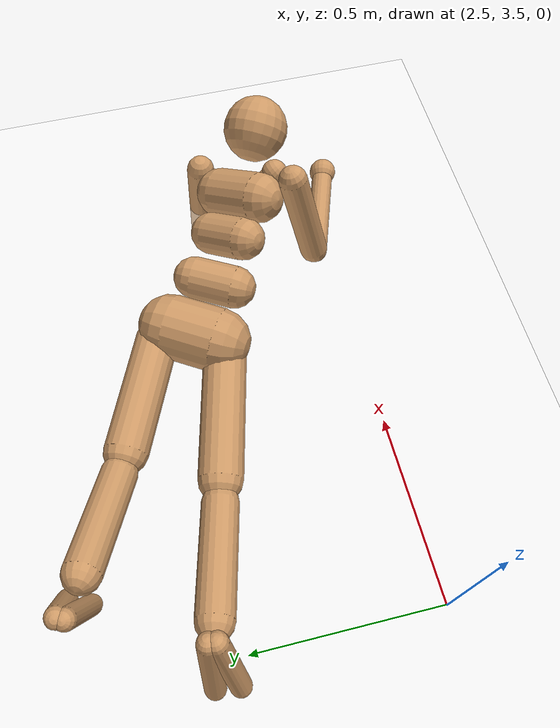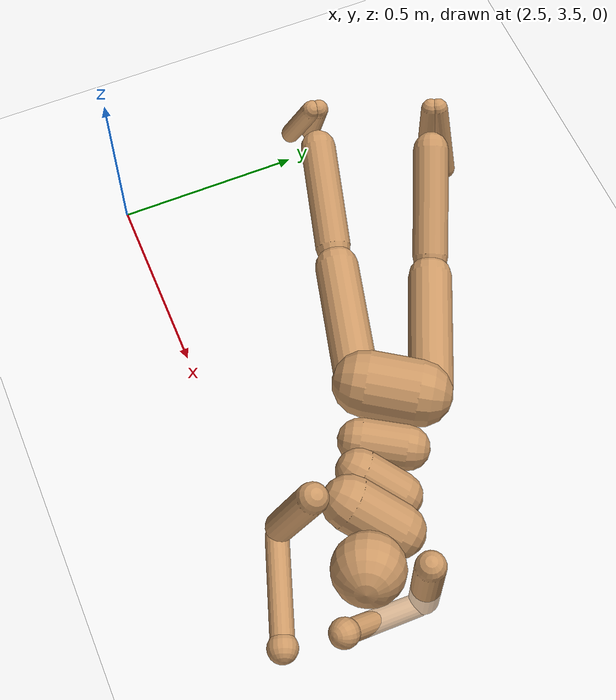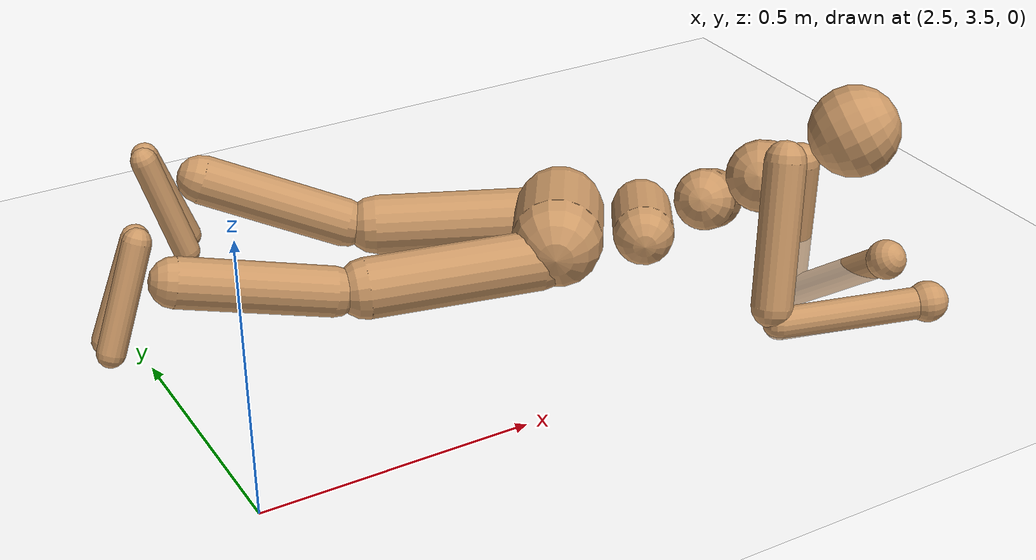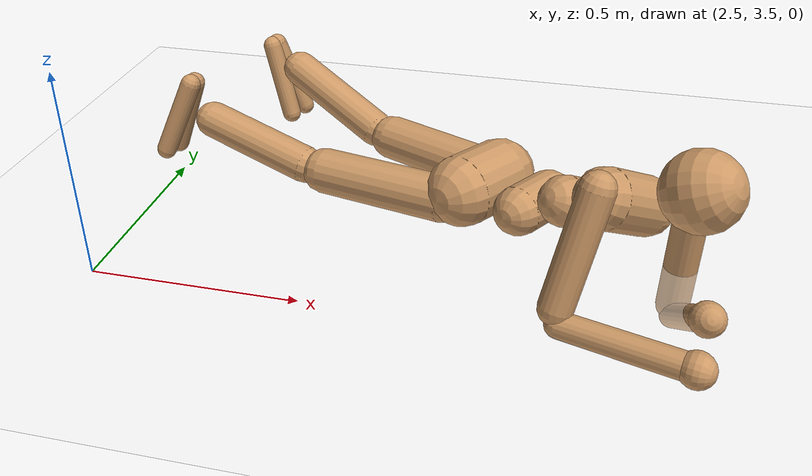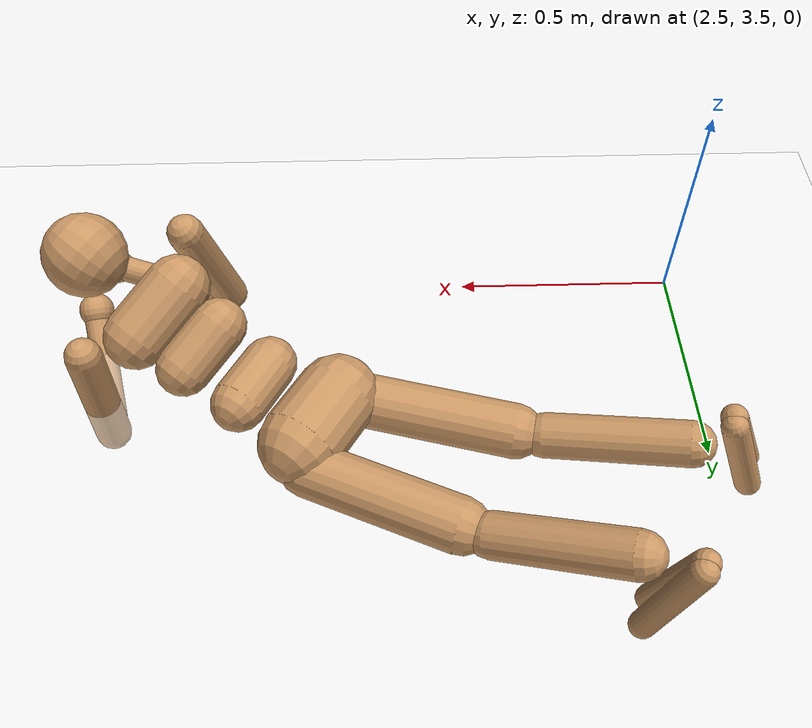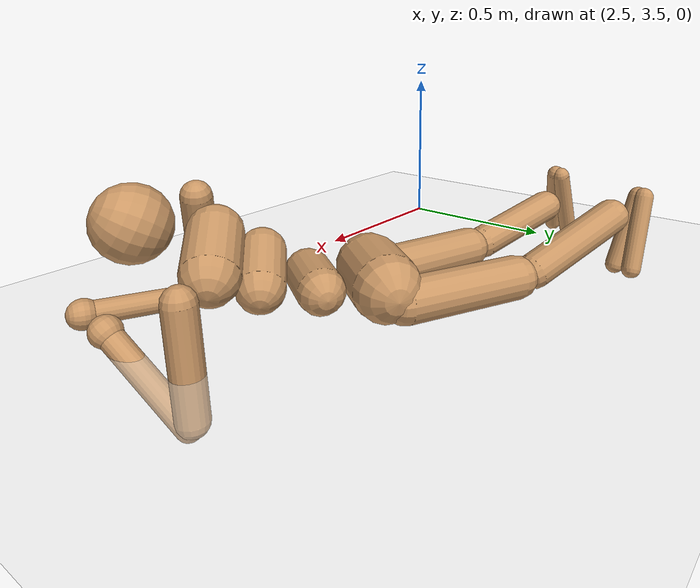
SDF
<sdf version="1.10">
 <world name="empty">
  <model name="ground_plane">
   <static>true</static>
   <link name="link">
    <collision name="collision">
     <geometry><plane><normal>0 0 1</normal><size>100 100</size></plane></geometry>
    </collision>
    <visual name="visual">
     <geometry><plane><normal>0 0 1</normal><size>20 20</size></plane></geometry>
     <material>
      <ambient>1 1 1 1</ambient>
      <diffuse>1 1 1 1</diffuse>
      <pbr>
       <metal>
        <albedo_map>file:///home/kiranchand/Downloads/project_2026/grass.jpg</albedo_map>
        <roughness>0.9</roughness>
        <metalness>0.0</metalness>
       </metal>
      </pbr>
     </material>
    </visual>
    <inertial>
     <mass>1</mass>
     <inertia><ixx>1</ixx><ixy>0</ixy><ixz>0</ixz><iyy>1</iyy><iyz>0</iyz><izz>1</izz></inertia>
    </inertial>
   </link>
  </model>
  <model name="humanod_from_mjcf">
   <static>false</static>
   <pose>2.5448099758621097 4.3788755101594283 -0.53820748431299448 -0.71282996008800936 0.85456380769252327 -1.3645939909063616</pose>
   <link name="torso">
    <pose>0 0 1.5 0 0 0</pose>
    <inertial>
     <pose>-0.00386404 0 -0.0463685 0 0.08314120000000004 0</pose>
     <mass>5.8538300000000003</mass>
     <inertia>
      <ixx>0.051274199999999999</ixx>
      <ixy>0</ixy>
      <ixz>0</ixz>
      <iyy>0.031966700000000001</iyy>
      <iyz>0</iyz>
      <izz>0.031149300000000001</izz>
     </inertia>
    </inertial>
    <collision name="collision_torso">
     <pose>0 0 0 1.5708 0 0</pose>
     <geometry>
      <capsule><radius>0.070000000000000007</radius><length>0.14000000000000001</length></capsule>
     </geometry>
     <surface>
      <contact><collide_bitmask>255</collide_bitmask></contact>
      <friction><ode><mu>0.69999999999999996</mu></ode></friction>
     </surface>
    </collision>
    <collision name="collision_upper_waist">
     <pose>-0.01 0 -0.12 1.5708 0 0</pose>
     <geometry><capsule><radius>0.059999999999999998</radius><length>0.12</length></capsule></geometry>
     <surface>
      <contact><collide_bitmask>255</collide_bitmask></contact>
      <friction><ode><mu>0.69999999999999996</mu></ode></friction>
     </surface>
    </collision>
    <light name="top" type="spot">
     <pose>0 0 2 0 0 0</pose>
     <cast_shadows>false</cast_shadows>
     <intensity>1</intensity>
     <direction>0 0 -1</direction>
     <diffuse>0.699999988 0.699999988 0.699999988 1</diffuse>
     <specular>0.300000012 0.300000012 0.300000012 1</specular>
     <attenuation><range>10</range><linear>0</linear><constant>1</constant><quadratic>0</quadratic></attenuation>
     <spot><inner_angle>0</inner_angle><outer_angle>1.5708</outer_angle><falloff>2</falloff></spot>
    </light>
    <sensor name="back" type="camera">
     <pose>-3 0 1 7.8504600000000004e-17 7.8504600000000004e-17 -7.8504600000000004e-17</pose>
     <topic>__default__</topic>
     <update_rate>25</update_rate>
     <enable_metrics>false</enable_metrics>
     <camera name="__default__">
      <horizontal_fov>1.0469999999999999</horizontal_fov>
      <image><width>320</width><height>240</height><format>RGB_INT8</format><anti_aliasing>4</anti_aliasing></image>
      <camera_info_topic>__default__</camera_info_topic>
      <triggered>false</triggered>
      <clip><near>0.10000000000000001</near><far>100</far></clip>
      <save enabled="false"><path>__default__</path></save>
      <visibility_mask>4294967295</visibility_mask>
      <noise><type>none</type><mean>0</mean><stddev>0</stddev></noise>
      <distortion><k1>0</k1><k2>0</k2><k3>0</k3><p1>0</p1><p2>0</p2><center>0.5 0.5</center></distortion>
      <lens>
       <type>stereographic</type>
       <scale_to_hfov>true</scale_to_hfov>
       <cutoff_angle>1.5708</cutoff_angle>
       <env_texture_size>256</env_texture_size>
      </lens>
     </camera>
    </sensor>
    <sensor name="side" type="camera">
     <pose>0 -3 1 2.2204499999999999e-16 2.4651903288156619e-32 1.5708</pose>
     <topic>__default__</topic>
     <update_rate>25</update_rate>
     <enable_metrics>false</enable_metrics>
     <camera name="__default__">
      <horizontal_fov>1.0469999999999999</horizontal_fov>
      <image><width>320</width><height>240</height><format>RGB_INT8</format><anti_aliasing>4</anti_aliasing></image>
      <camera_info_topic>__default__</camera_info_topic>
      <triggered>false</triggered>
      <clip><near>0.10000000000000001</near><far>100</far></clip>
      <save enabled="false"><path>__default__</path></save>
      <visibility_mask>4294967295</visibility_mask>
      <noise><type>none</type><mean>0</mean><stddev>0</stddev></noise>
      <distortion><k1>0</k1><k2>0</k2><k3>0</k3><p1>0</p1><p2>0</p2><center>0.5 0.5</center></distortion>
      <lens>
       <type>stereographic</type>
       <scale_to_hfov>true</scale_to_hfov>
       <cutoff_angle>1.5708</cutoff_angle>
       <env_texture_size>256</env_texture_size>
      </lens>
     </camera>
    </sensor>
    <visual name="visual_torso">
     <pose>0 0 0 1.5708 0 0</pose>
     <geometry>
      <capsule><radius>0.070000000000000007</radius><length>0.14000000000000001</length></capsule>
     </geometry>
     <visibility_flags>4294967295</visibility_flags>
     <material>
      <ambient>0.800000012 0.600000024 0.400000006 1</ambient>
      <diffuse>0.800000012 0.600000024 0.400000006 1</diffuse>
      <specular>0.5 0.5 0.5 1</specular>
      <emissive>0 0 0 1</emissive>
      <render_order>0</render_order>
      <lighting>true</lighting>
      <double_sided>false</double_sided>
      <shader type="pixel"/>
     </material>
    </visual>
    <visual name="visual_upper_waist">
     <pose>-0.01 0 -0.12 1.5708 0 0</pose>
     <geometry><capsule><radius>0.059999999999999998</radius><length>0.12</length></capsule></geometry>
     <visibility_flags>4294967295</visibility_flags>
     <material>
      <ambient>0.800000012 0.600000024 0.400000006 1</ambient>
      <diffuse>0.800000012 0.600000024 0.400000006 1</diffuse>
      <specular>0.5 0.5 0.5 1</specular>
      <emissive>0 0 0 1</emissive>
      <render_order>0</render_order>
      <lighting>true</lighting>
      <double_sided>false</double_sided>
      <shader type="pixel"/>
     </material>
    </visual>
   </link>
   <link name="head">
    <pose>0 1.7763568394002505e-15 1.6900000000000013 1.6653345369377348e-16 -7.1275450819197061e-16 -5.9348734942507915e-32</pose>
    <inertial>
     <mass>3.0536300000000001</mass>
     <inertia>
      <ixx>0.0098937499999999998</ixx>
      <ixy>0</ixy>
      <ixz>0</ixz>
      <iyy>0.0098937499999999998</iyy>
      <iyz>0</iyz>
      <izz>0.0098937499999999998</izz>
     </inertia>
    </inertial>
    <collision name="collision_head">
     <geometry><sphere><radius>0.089999999999999997</radius></sphere></geometry>
     <surface>
      <contact><collide_bitmask>255</collide_bitmask></contact>
      <friction><ode><mu>0.69999999999999996</mu></ode></friction>
     </surface>
    </collision>
    <sensor name="egocentric" type="camera">
     <pose>0.089999999999999997 0 0 2.0641799999999988e-16 0.095166200000000006 -3.2285999999999984e-16</pose>
     <topic>__default__</topic>
     <update_rate>25</update_rate>
     <enable_metrics>false</enable_metrics>
     <camera name="__default__">
      <horizontal_fov>1.0469999999999999</horizontal_fov>
      <image><width>320</width><height>240</height><format>RGB_INT8</format><anti_aliasing>4</anti_aliasing></image>
      <camera_info_topic>__default__</camera_info_topic>
      <triggered>false</triggered>
      <clip><near>0.10000000000000001</near><far>100</far></clip>
      <save enabled="false"><path>__default__</path></save>
      <visibility_mask>4294967295</visibility_mask>
      <noise><type>none</type><mean>0</mean><stddev>0</stddev></noise>
      <distortion><k1>0</k1><k2>0</k2><k3>0</k3><p1>0</p1><p2>0</p2><center>0.5 0.5</center></distortion>
      <lens>
       <type>stereographic</type>
       <scale_to_hfov>true</scale_to_hfov>
       <cutoff_angle>1.5708</cutoff_angle>
       <env_texture_size>256</env_texture_size>
      </lens>
     </camera>
    </sensor>
    <visual name="visual_head">
     <geometry><sphere><radius>0.089999999999999997</radius></sphere></geometry>
     <visibility_flags>4294967295</visibility_flags>
     <material>
      <ambient>0.800000012 0.600000024 0.400000006 1</ambient>
      <diffuse>0.800000012 0.600000024 0.400000006 1</diffuse>
      <specular>0.5 0.5 0.5 1</specular>
      <emissive>0 0 0 1</emissive>
      <render_order>0</render_order>
      <lighting>true</lighting>
      <double_sided>false</double_sided>
      <shader type="pixel"/>
     </material>
    </visual>
   </link>
   <link name="lower_waist">
    <pose>-0.028713365916392508 -0.0093121781888401145 1.2434525120459132 -2.9312527204387672e-17 0.32739137618254172 0.46174321219167797</pose>
    <inertial>
     <pose>0 0 0 1.5708 0 0</pose>
     <mass>2.2619500000000001</mass>
     <inertia>
      <ixx>0.0098530400000000004</ixx>
      <ixy>0</ixy>
      <ixz>0</ixz>
      <iyy>0.0098530400000000004</iyy>
      <iyz>0</iyz>
      <izz>0.0037457800000000002</izz>
     </inertia>
    </inertial>
    <collision name="collision_lower_waist">
     <pose>0 0 0 1.5708 0 0</pose>
     <geometry><capsule><radius>0.059999999999999998</radius><length>0.12</length></capsule></geometry>
     <surface>
      <contact><collide_bitmask>255</collide_bitmask></contact>
      <friction><ode><mu>0.69999999999999996</mu></ode></friction>
     </surface>
    </collision>
    <visual name="visual_lower_waist">
     <pose>0 0 0 1.5708 0 0</pose>
     <geometry><capsule><radius>0.059999999999999998</radius><length>0.12</length></capsule></geometry>
     <visibility_flags>4294967295</visibility_flags>
     <material>
      <ambient>0.800000012 0.600000024 0.400000006 1</ambient>
      <diffuse>0.800000012 0.600000024 0.400000006 1</diffuse>
      <specular>0.5 0.5 0.5 1</specular>
      <emissive>0 0 0 1</emissive>
      <render_order>0</render_order>
      <lighting>true</lighting>
      <double_sided>false</double_sided>
      <shader type="pixel"/>
     </material>
    </visual>
   </link>
   <link name="lower_waist_dummy_0">
    <pose>-0.0099999999999988987 8.8817841970012523e-16 1.2400000000000009 -2.2229199491852151e-16 -9.4567010196203731e-16 0.46174321219167835</pose>
    <inertial>
     <mass>9.9999999999999995e-07</mass>
     <inertia>
      <ixx>3.9999999999999998e-07</ixx>
      <ixy>0</ixy>
      <ixz>0</ixz>
      <iyy>3.9999999999999998e-07</iyy>
      <iyz>0</iyz>
      <izz>3.9999999999999998e-07</izz>
     </inertia>
    </inertial>
   </link>
   <link name="pelvis">
    <pose>-0.077874604998719121 -0.029567527596033649 1.0872838107020317 0.037685347690583022 0.32739137618254088 0.46174321219167741</pose>
    <inertial>
     <pose>-0.02 0 0 1.5708 0 0</pose>
     <mass>6.6161899999999996</mass>
     <inertia>
      <ixx>0.052318000000000003</ixx>
      <ixy>0</ixy>
      <ixz>0</ixz>
      <iyy>0.052318000000000003</iyy>
      <iyz>0</iyz>
      <izz>0.024322099999999999</izz>
     </inertia>
    </inertial>
    <collision name="collision_butt">
     <pose>-0.02 0 0 1.5708 0 0</pose>
     <geometry>
      <capsule><radius>0.089999999999999997</radius><length>0.14000000000000001</length></capsule>
     </geometry>
     <surface>
      <contact><collide_bitmask>255</collide_bitmask></contact>
      <friction><ode><mu>0.69999999999999996</mu></ode></friction>
     </surface>
    </collision>
    <visual name="visual_butt">
     <pose>-0.02 0 0 1.5708 0 0</pose>
     <geometry>
      <capsule><radius>0.089999999999999997</radius><length>0.14000000000000001</length></capsule>
     </geometry>
     <visibility_flags>4294967295</visibility_flags>
     <material>
      <ambient>0.800000012 0.600000024 0.400000006 1</ambient>
      <diffuse>0.800000012 0.600000024 0.400000006 1</diffuse>
      <specular>0.5 0.5 0.5 1</specular>
      <emissive>0 0 0 1</emissive>
      <render_order>0</render_order>
      <lighting>true</lighting>
      <double_sided>false</double_sided>
      <shader type="pixel"/>
     </material>
    </visual>
   </link>
   <link name="right_thigh">
    <pose>-0.046619138292701479 -0.12394872332954066 1.0458678030129474 -0.34054518011049906 0.4595290586002167 0.39873370778583783</pose>
    <inertial>
     <pose>0 0.0050000000000000001 -0.17000000000000001 0.02940329999999999 0 0</pose>
     <mass>4.7517500000000004</mass>
     <inertia>
      <ixx>0.074951699999999996</ixx>
      <ixy>0</ixy>
      <ixz>0</ixz>
      <iyy>0.074951699999999996</iyy>
      <iyz>0</iyz>
      <izz>0.0082274300000000009</izz>
     </inertia>
    </inertial>
    <collision name="collision_right_thigh">
     <pose>0 0.0050000000000000001 -0.17000000000000001 0.029403299999999993 0 0</pose>
     <geometry>
      <capsule><radius>0.059999999999999998</radius><length>0.34014699999999998</length></capsule>
     </geometry>
     <surface>
      <contact><collide_bitmask>255</collide_bitmask></contact>
      <friction><ode><mu>0.69999999999999996</mu></ode></friction>
     </surface>
    </collision>
    <visual name="visual_right_thigh">
     <pose>0 0.0050000000000000001 -0.17000000000000001 0.029403299999999993 0 0</pose>
     <geometry>
      <capsule><radius>0.059999999999999998</radius><length>0.34014699999999998</length></capsule>
     </geometry>
     <visibility_flags>4294967295</visibility_flags>
     <material>
      <ambient>0.800000012 0.600000024 0.400000006 1</ambient>
      <diffuse>0.800000012 0.600000024 0.400000006 1</diffuse>
      <specular>0.5 0.5 0.5 1</specular>
      <emissive>0 0 0 1</emissive>
      <render_order>0</render_order>
      <lighting>true</lighting>
      <double_sided>false</double_sided>
      <shader type="pixel"/>
     </material>
    </visual>
   </link>
   <link name="right_thigh_dummy_0">
    <pose>-0.046618132881000029 -0.12394867423652745 1.0458678482773707 -0.31723047312103386 0.32738736892012427 0.46174055459103008</pose>
    <inertial>
     <mass>9.9999999999999995e-07</mass>
     <inertia>
      <ixx>3.9999999999999998e-07</ixx>
      <ixy>0</ixy>
      <ixz>0</ixz>
      <iyy>3.9999999999999998e-07</iyy>
      <iyz>0</iyz>
      <izz>3.9999999999999998e-07</izz>
     </inertia>
    </inertial>
   </link>
   <link name="right_thigh_dummy_1">
    <pose>-0.046618132881000029 -0.12394867423652745 1.0458678482773713 -0.32122774724551906 0.32347174062191397 0.44923814021391423</pose>
    <inertial>
     <mass>9.9999999999999995e-07</mass>
     <inertia>
      <ixx>3.9999999999999998e-07</ixx>
      <ixy>0</ixy>
      <ixz>0</ixz>
      <iyy>3.9999999999999998e-07</iyy>
      <iyz>0</iyz>
      <izz>3.9999999999999998e-07</izz>
     </inertia>
    </inertial>
   </link>
   <link name="right_shin">
    <pose>-0.15851596583142369 -0.30670514780440072 0.70509672438244209 -0.39848238343238479 0.68960230685647683 0.29290224150087368</pose>
    <inertial>
     <pose>0 0 -0.14999999999999999 0 0 0</pose>
     <mass>2.7557</mass>
     <inertia>
      <ixx>0.032607999999999998</ixx>
      <ixy>0</ixy>
      <ixz>0</ixz>
      <iyy>0.032607999999999998</iyy>
      <iyz>0</iyz>
      <izz>0.0031898899999999999</izz>
     </inertia>
    </inertial>
    <collision name="collision_right_shin">
     <pose>0 0 -0.14999999999999999 0 0 0</pose>
     <geometry>
      <capsule><radius>0.049000000000000002</radius><length>0.29999999999999999</length></capsule>
     </geometry>
     <surface>
      <contact><collide_bitmask>255</collide_bitmask></contact>
      <friction><ode><mu>0.69999999999999996</mu></ode></friction>
     </surface>
    </collision>
    <visual name="visual_right_shin">
     <pose>0 0 -0.14999999999999999 0 0 0</pose>
     <geometry>
      <capsule><radius>0.049000000000000002</radius><length>0.29999999999999999</length></capsule>
     </geometry>
     <visibility_flags>4294967295</visibility_flags>
     <material>
      <ambient>0.800000012 0.600000024 0.400000006 1</ambient>
      <diffuse>0.800000012 0.600000024 0.400000006 1</diffuse>
      <specular>0.5 0.5 0.5 1</specular>
      <emissive>0 0 0 1</emissive>
      <render_order>0</render_order>
      <lighting>true</lighting>
      <double_sided>false</double_sided>
      <shader type="pixel"/>
     </material>
    </visual>
   </link>
   <link name="right_foot">
    <pose>-0.34024670426983494 -0.52168910949273695 0.43616303184288063 -0.54512351942040893 0.79993000925645397 0.17445295693411811</pose>
    <inertial>
     <pose>0.035000000000000003 -0.01 0 2.6535897933102466e-06 -1.5707926536359933 3.1415926535897931</pose>
     <mass>1.13114</mass>
     <inertia>
      <ixx>0.0064464600000000002</ixx>
      <ixy>0</ixy>
      <ixz>0</ixz>
      <iyy>0.0059437200000000004</iyy>
      <iyz>0</iyz>
      <izz>0.00090301699999999999</izz>
     </inertia>
    </inertial>
    <collision name="collision_right_right_foot">
     <pose>0.035000000000000003 -0.029999999999999999 0 -1.5707999999999998 -1.47584 1.47584</pose>
     <geometry><capsule><radius>0.027</radius><length>0.21095</length></capsule></geometry>
     <surface>
      <contact><collide_bitmask>255</collide_bitmask></contact>
      <friction><ode><mu>0.69999999999999996</mu></ode></friction>
     </surface>
    </collision>
    <collision name="collision_left_right_foot">
     <pose>0.035000000000000003 0.01 0 1.5707999999999998 -1.47584 -1.47584</pose>
     <geometry><capsule><radius>0.027</radius><length>0.21095</length></capsule></geometry>
     <surface>
      <contact><collide_bitmask>255</collide_bitmask></contact>
      <friction><ode><mu>0.69999999999999996</mu></ode></friction>
     </surface>
    </collision>
    <visual name="visual_right_right_foot">
     <pose>0.035000000000000003 -0.029999999999999999 0 -1.5707999999999998 -1.47584 1.47584</pose>
     <geometry><capsule><radius>0.027</radius><length>0.21095</length></capsule></geometry>
     <visibility_flags>4294967295</visibility_flags>
     <material>
      <ambient>0.800000012 0.600000024 0.400000006 1</ambient>
      <diffuse>0.800000012 0.600000024 0.400000006 1</diffuse>
      <specular>0.5 0.5 0.5 1</specular>
      <emissive>0 0 0 1</emissive>
      <render_order>0</render_order>
      <lighting>true</lighting>
      <double_sided>false</double_sided>
      <shader type="pixel"/>
     </material>
    </visual>
    <visual name="visual_left_right_foot">
     <pose>0.035000000000000003 0.01 0 1.5707999999999998 -1.47584 -1.47584</pose>
     <geometry><capsule><radius>0.027</radius><length>0.21095</length></capsule></geometry>
     <visibility_flags>4294967295</visibility_flags>
     <material>
      <ambient>0.800000012 0.600000024 0.400000006 1</ambient>
      <diffuse>0.800000012 0.600000024 0.400000006 1</diffuse>
      <specular>0.5 0.5 0.5 1</specular>
      <emissive>0 0 0 1</emissive>
      <render_order>0</render_order>
      <lighting>true</lighting>
      <double_sided>false</double_sided>
      <shader type="pixel"/>
     </material>
    </visual>
   </link>
   <link name="right_foot_dummy_0">
    <pose>-0.34154866673836626 -0.51965567545195412 0.4353174233925754 -0.45177926445464667 0.81522141683491112 0.21508922472239589</pose>
    <inertial>
     <mass>9.9999999999999995e-07</mass>
     <inertia>
      <ixx>3.9999999999999998e-07</ixx>
      <ixy>0</ixy>
      <ixz>0</ixz>
      <iyy>3.9999999999999998e-07</iyy>
      <iyz>0</iyz>
      <izz>3.9999999999999998e-07</izz>
     </inertia>
    </inertial>
   </link>
   <link name="left_thigh">
    <pose>-0.13348718239118629 0.056059301212010304 1.0530020624678933 0.01259513654903311 0.52148337464991723 0.65292000145459606</pose>
    <inertial>
     <pose>0 -0.0050000000000000001 -0.17000000000000001 -0.02940329999999999 0 0</pose>
     <mass>4.7517500000000004</mass>
     <inertia>
      <ixx>0.074951699999999996</ixx>
      <ixy>0</ixy>
      <ixz>0</ixz>
      <iyy>0.074951699999999996</iyy>
      <iyz>0</iyz>
      <izz>0.0082274300000000009</izz>
     </inertia>
    </inertial>
    <collision name="collision_left_thigh">
     <pose>0 -0.0050000000000000001 -0.17000000000000001 -0.029403299999999993 0 0</pose>
     <geometry>
      <capsule><radius>0.059999999999999998</radius><length>0.34014699999999998</length></capsule>
     </geometry>
     <surface>
      <contact><collide_bitmask>255</collide_bitmask></contact>
      <friction><ode><mu>0.69999999999999996</mu></ode></friction>
     </surface>
    </collision>
    <visual name="visual_left_thigh">
     <pose>0 -0.0050000000000000001 -0.17000000000000001 -0.029403299999999993 0 0</pose>
     <geometry>
      <capsule><radius>0.059999999999999998</radius><length>0.34014699999999998</length></capsule>
     </geometry>
     <visibility_flags>4294967295</visibility_flags>
     <material>
      <ambient>0.800000012 0.600000024 0.400000006 1</ambient>
      <diffuse>0.800000012 0.600000024 0.400000006 1</diffuse>
      <specular>0.5 0.5 0.5 1</specular>
      <emissive>0 0 0 1</emissive>
      <render_order>0</render_order>
      <lighting>true</lighting>
      <double_sided>false</double_sided>
      <shader type="pixel"/>
     </material>
    </visual>
   </link>
   <link name="left_thigh_dummy_0">
    <pose>-0.13348718239118718 0.056059301212009416 1.0530020624678937 -0.049585592036656197 0.32738736892012432 0.46174055459103003</pose>
    <inertial>
     <mass>9.9999999999999995e-07</mass>
     <inertia>
      <ixx>3.9999999999999998e-07</ixx>
      <ixy>0</ixy>
      <ixz>0</ixz>
      <iyy>3.9999999999999998e-07</iyy>
      <iyz>0</iyz>
      <izz>3.9999999999999998e-07</izz>
     </inertia>
    </inertial>
   </link>
   <link name="left_thigh_dummy_1">
    <pose>-0.13348718239118629 0.056059301212010304 1.0530020624678933 0.011546979827897328 0.33079343120468235 0.6503958055989697</pose>
    <inertial>
     <mass>9.9999999999999995e-07</mass>
     <inertia>
      <ixx>3.9999999999999998e-07</ixx>
      <ixy>0</ixy>
      <ixz>0</ixz>
      <iyy>3.9999999999999998e-07</iyy>
      <iyz>0</iyz>
      <izz>3.9999999999999998e-07</izz>
     </inertia>
    </inertial>
   </link>
   <link name="left_shin">
    <pose>-0.29466980349246574 -0.073439466434549239 0.70863910885454062 0.01791852227785835 0.91536924943852105 0.66085142078668613</pose>
    <inertial>
     <pose>0 0 -0.14999999999999999 0 0 0</pose>
     <mass>2.7557</mass>
     <inertia>
      <ixx>0.032607999999999998</ixx>
      <ixy>0</ixy>
      <ixz>0</ixz>
      <iyy>0.032607999999999998</iyy>
      <iyz>0</iyz>
      <izz>0.0031898899999999999</izz>
     </inertia>
    </inertial>
    <collision name="collision_left_shin">
     <pose>0 0 -0.14999999999999999 0 0 0</pose>
     <geometry>
      <capsule><radius>0.049000000000000002</radius><length>0.29999999999999999</length></capsule>
     </geometry>
     <surface>
      <contact><collide_bitmask>255</collide_bitmask></contact>
      <friction><ode><mu>0.69999999999999996</mu></ode></friction>
     </surface>
    </collision>
    <visual name="visual_left_shin">
     <pose>0 0 -0.14999999999999999 0 0 0</pose>
     <geometry>
      <capsule><radius>0.049000000000000002</radius><length>0.29999999999999999</length></capsule>
     </geometry>
     <visibility_flags>4294967295</visibility_flags>
     <material>
      <ambient>0.800000012 0.600000024 0.400000006 1</ambient>
      <diffuse>0.800000012 0.600000024 0.400000006 1</diffuse>
      <specular>0.5 0.5 0.5 1</specular>
      <emissive>0 0 0 1</emissive>
      <render_order>0</render_order>
      <lighting>true</lighting>
      <double_sided>false</double_sided>
      <shader type="pixel"/>
     </material>
    </visual>
   </link>
   <link name="left_foot">
    <pose>-0.50506601759411174 -0.23138492137201361 0.44166201898431989 -0.050130662716247471 0.21726621521710293 0.62079886786259719</pose>
    <inertial>
     <pose>0.035000000000000003 0.01 0 2.6535897933102466e-06 -1.5707926536359933 3.1415926535897931</pose>
     <mass>1.13114</mass>
     <inertia>
      <ixx>0.0064464600000000002</ixx>
      <ixy>0</ixy>
      <ixz>0</ixz>
      <iyy>0.0059437200000000004</iyy>
      <iyz>0</iyz>
      <izz>0.00090301699999999999</izz>
     </inertia>
    </inertial>
    <collision name="collision_left_left_foot">
     <pose>0.035000000000000003 0.029999999999999999 0 1.5707999999999998 -1.47584 -1.47584</pose>
     <geometry><capsule><radius>0.027</radius><length>0.21095</length></capsule></geometry>
     <surface>
      <contact><collide_bitmask>255</collide_bitmask></contact>
      <friction><ode><mu>0.69999999999999996</mu></ode></friction>
     </surface>
    </collision>
    <collision name="collision_right_left_foot">
     <pose>0.035000000000000003 -0.01 0 -1.5707999999999998 -1.47584 1.47584</pose>
     <geometry><capsule><radius>0.027</radius><length>0.21095</length></capsule></geometry>
     <surface>
      <contact><collide_bitmask>255</collide_bitmask></contact>
      <friction><ode><mu>0.69999999999999996</mu></ode></friction>
     </surface>
    </collision>
    <visual name="visual_left_left_foot">
     <pose>0.035000000000000003 0.029999999999999999 0 1.5707999999999998 -1.47584 -1.47584</pose>
     <geometry><capsule><radius>0.027</radius><length>0.21095</length></capsule></geometry>
     <visibility_flags>4294967295</visibility_flags>
     <material>
      <ambient>0.800000012 0.600000024 0.400000006 1</ambient>
      <diffuse>0.800000012 0.600000024 0.400000006 1</diffuse>
      <specular>0.5 0.5 0.5 1</specular>
      <emissive>0 0 0 1</emissive>
      <render_order>0</render_order>
      <lighting>true</lighting>
      <double_sided>false</double_sided>
      <shader type="pixel"/>
     </material>
    </visual>
    <visual name="visual_right_left_foot">
     <pose>0.035000000000000003 -0.01 0 -1.5707999999999998 -1.47584 1.47584</pose>
     <geometry><capsule><radius>0.027</radius><length>0.21095</length></capsule></geometry>
     <visibility_flags>4294967295</visibility_flags>
     <material>
      <ambient>0.800000012 0.600000024 0.400000006 1</ambient>
      <diffuse>0.800000012 0.600000024 0.400000006 1</diffuse>
      <specular>0.5 0.5 0.5 1</specular>
      <emissive>0 0 0 1</emissive>
      <render_order>0</render_order>
      <lighting>true</lighting>
      <double_sided>false</double_sided>
      <shader type="pixel"/>
     </material>
    </visual>
   </link>
   <link name="left_foot_dummy_0">
    <pose>-0.50638293090790931 -0.22961296716690249 0.44162003246023707 0.011185201874225824 0.21780371492461803 0.64906233079317732</pose>
    <inertial>
     <mass>9.9999999999999995e-07</mass>
     <inertia>
      <ixx>3.9999999999999998e-07</ixx>
      <ixy>0</ixy>
      <ixz>0</ixz>
      <iyy>3.9999999999999998e-07</iyy>
      <iyz>0</iyz>
      <izz>3.9999999999999998e-07</izz>
     </inertia>
    </inertial>
   </link>
   <link name="right_upper_arm">
    <pose>-4.4408920985006262e-16 -0.16999999999999993 1.5599999999999992 0.48884114961825337 -0.3551265585519926 0.44174148382715939</pose>
    <inertial>
     <pose>0.080000000000000002 -0.080000000000000002 -0.080000000000000002 -0.78539800000000026 -0.61548000000000003 0.26179900000000006</pose>
     <mass>1.6610799999999999</mass>
     <inertia>
      <ixx>0.015905499999999999</ixx>
      <ixy>0</ixy>
      <ixz>0</ixz>
      <iyy>0.015905499999999999</iyy>
      <iyz>0</iyz>
      <izz>0.00128597</izz>
     </inertia>
    </inertial>
    <collision name="collision_right_upper_arm">
     <pose>0.080000000000000002 -0.080000000000000002 -0.080000000000000002 -0.78539800000000026 -0.61548000000000003 0.26179900000000006</pose>
     <geometry>
      <capsule><radius>0.040000000000000001</radius><length>0.27712799999999999</length></capsule>
     </geometry>
     <surface>
      <contact><collide_bitmask>255</collide_bitmask></contact>
      <friction><ode><mu>0.69999999999999996</mu></ode></friction>
     </surface>
    </collision>
    <visual name="visual_right_upper_arm">
     <pose>0.080000000000000002 -0.080000000000000002 -0.080000000000000002 -0.78539800000000026 -0.61548000000000003 0.26179900000000006</pose>
     <geometry>
      <capsule><radius>0.040000000000000001</radius><length>0.27712799999999999</length></capsule>
     </geometry>
     <visibility_flags>4294967295</visibility_flags>
     <material>
      <ambient>0.800000012 0.600000024 0.400000006 1</ambient>
      <diffuse>0.800000012 0.600000024 0.400000006 1</diffuse>
      <specular>0.5 0.5 0.5 1</specular>
      <emissive>0 0 0 1</emissive>
      <render_order>0</render_order>
      <lighting>true</lighting>
      <double_sided>false</double_sided>
      <shader type="pixel"/>
     </material>
    </visual>
   </link>
   <link name="right_upper_arm_dummy_0">
    <pose>-4.4408920985006262e-16 -0.16999999999999904 1.5600000000000001 0.50367271725719054 0.17023334289219172 0.28689726820990608</pose>
    <inertial>
     <mass>9.9999999999999995e-07</mass>
     <inertia>
      <ixx>3.9999999999999998e-07</ixx>
      <ixy>0</ixy>
      <ixz>0</ixz>
      <iyy>3.9999999999999998e-07</iyy>
      <iyz>0</iyz>
      <izz>3.9999999999999998e-07</izz>
     </inertia>
    </inertial>
   </link>
   <link name="right_lower_arm">
    <pose>0.26089368501057897 -0.12890924585350039 1.3943315508454539 0.50249954607003289 -0.19230044120325504 0.39138979437184923</pose>
    <inertial>
     <pose>0.089999999999999997 0.089999999999999997 0.089999999999999997 2.3561899999999998 -0.61548000000000003 -1.3089999999999999</pose>
     <mass>0.96145800000000003</mass>
     <inertia>
      <ixx>0.0084016200000000003</ixx>
      <ixy>0</ixy>
      <ixz>0</ixz>
      <iyy>0.0084016200000000003</iyy>
      <iyz>0</iyz>
      <izz>0.00044998800000000002</izz>
     </inertia>
    </inertial>
    <collision name="collision_right_lower_arm">
     <pose>0.089999999999999997 0.089999999999999997 0.089999999999999997 2.3561899999999998 -0.61548000000000003 -1.3089999999999999</pose>
     <geometry><capsule><radius>0.031</radius><length>0.27712799999999999</length></capsule></geometry>
     <surface>
      <contact><collide_bitmask>255</collide_bitmask></contact>
      <friction><ode><mu>0.69999999999999996</mu></ode></friction>
     </surface>
    </collision>
    <visual name="visual_right_lower_arm">
     <pose>0.089999999999999997 0.089999999999999997 0.089999999999999997 2.3561899999999998 -0.61548000000000003 -1.3089999999999999</pose>
     <geometry><capsule><radius>0.031</radius><length>0.27712799999999999</length></capsule></geometry>
     <visibility_flags>4294967295</visibility_flags>
     <material>
      <ambient>0.800000012 0.600000024 0.400000006 1</ambient>
      <diffuse>0.800000012 0.600000024 0.400000006 1</diffuse>
      <specular>0.5 0.5 0.5 1</specular>
      <emissive>0 0 0 1</emissive>
      <render_order>0</render_order>
      <lighting>true</lighting>
      <double_sided>false</double_sided>
      <shader type="pixel"/>
     </material>
    </visual>
   </link>
   <link name="right_hand">
    <pose>0.35392450165831857 -0.01364678599509439 1.6686668065113004 0.50249954607003444 -0.19230044120325437 0.39138979437184773</pose>
    <inertial>
     <pose>0 0 0 -0.78539800000000026 0.61548000000000003 -0.26179900000000006</pose>
     <mass>0.26808300000000002</mass>
     <inertia>
      <ixx>0.00017157300000000001</ixx>
      <ixy>0</ixy>
      <ixz>0</ixz>
      <iyy>0.00017157300000000001</iyy>
      <iyz>0</iyz>
      <izz>0.00017157300000000001</izz>
     </inertia>
    </inertial>
    <collision name="collision_right_hand">
     <pose>0 0 0 -0.78539800000000026 0.61548000000000003 -0.26179900000000006</pose>
     <geometry><sphere><radius>0.040000000000000001</radius></sphere></geometry>
     <surface>
      <contact><collide_bitmask>255</collide_bitmask></contact>
      <friction><ode><mu>0.69999999999999996</mu></ode></friction>
     </surface>
    </collision>
    <visual name="visual_right_hand">
     <pose>0 0 0 -0.78539800000000026 0.61548000000000003 -0.26179900000000006</pose>
     <geometry><sphere><radius>0.040000000000000001</radius></sphere></geometry>
     <visibility_flags>4294967295</visibility_flags>
     <material>
      <ambient>0.800000012 0.600000024 0.400000006 1</ambient>
      <diffuse>0.800000012 0.600000024 0.400000006 1</diffuse>
      <specular>0.5 0.5 0.5 1</specular>
      <emissive>0 0 0 1</emissive>
      <render_order>0</render_order>
      <lighting>true</lighting>
      <double_sided>false</double_sided>
      <shader type="pixel"/>
     </material>
    </visual>
   </link>
   <link name="left_upper_arm">
    <pose>-4.4408920985006262e-16 0.17000000000000082 1.5600000000000005 -0.04488350867732141 -0.13767244240623258 -0.17500653261690008</pose>
    <inertial>
     <pose>0.080000000000000002 0.080000000000000002 -0.080000000000000002 0.78539800000000026 -0.61548000000000003 -0.26179900000000006</pose>
     <mass>1.6610799999999999</mass>
     <inertia>
      <ixx>0.015905499999999999</ixx>
      <ixy>0</ixy>
      <ixz>0</ixz>
      <iyy>0.015905499999999999</iyy>
      <iyz>0</iyz>
      <izz>0.00128597</izz>
     </inertia>
    </inertial>
    <collision name="collision_left_upper_arm">
     <pose>0.080000000000000002 0.080000000000000002 -0.080000000000000002 0.78539800000000026 -0.61548000000000003 -0.26179900000000006</pose>
     <geometry>
      <capsule><radius>0.040000000000000001</radius><length>0.27712799999999999</length></capsule>
     </geometry>
     <surface>
      <contact><collide_bitmask>255</collide_bitmask></contact>
      <friction><ode><mu>0.69999999999999996</mu></ode></friction>
     </surface>
    </collision>
    <visual name="visual_left_upper_arm">
     <pose>0.080000000000000002 0.080000000000000002 -0.080000000000000002 0.78539800000000026 -0.61548000000000003 -0.26179900000000006</pose>
     <geometry>
      <capsule><radius>0.040000000000000001</radius><length>0.27712799999999999</length></capsule>
     </geometry>
     <visibility_flags>4294967295</visibility_flags>
     <material>
      <ambient>0.800000012 0.600000024 0.400000006 1</ambient>
      <diffuse>0.800000012 0.600000024 0.400000006 1</diffuse>
      <specular>0.5 0.5 0.5 1</specular>
      <emissive>0 0 0 1</emissive>
      <render_order>0</render_order>
      <lighting>true</lighting>
      <double_sided>false</double_sided>
      <shader type="pixel"/>
     </material>
    </visual>
   </link>
   <link name="left_upper_arm_dummy_0">
    <pose>-8.8817841970012523e-16 0.17000000000000082 1.5600000000000016 -0.053201169414376345 0.025709624756734092 -0.027114957766811242</pose>
    <inertial>
     <mass>9.9999999999999995e-07</mass>
     <inertia>
      <ixx>3.9999999999999998e-07</ixx>
      <ixy>0</ixy>
      <ixz>0</ixz>
      <iyy>3.9999999999999998e-07</iyy>
      <iyz>0</iyz>
      <izz>3.9999999999999998e-07</izz>
     </inertia>
    </inertial>
   </link>
   <link name="left_lower_arm">
    <pose>0.23086875664604722 0.30358525020578497 1.3985856322003341 0.015905002022641234 -0.37524824613563434 -0.4119238845004583</pose>
    <inertial>
     <pose>0.089999999999999997 -0.089999999999999997 0.089999999999999997 -2.3561899999999998 -0.61548000000000003 1.3089999999999999</pose>
     <mass>0.96145800000000003</mass>
     <inertia>
      <ixx>0.0084016200000000003</ixx>
      <ixy>0</ixy>
      <ixz>0</ixz>
      <iyy>0.0084016200000000003</iyy>
      <iyz>0</iyz>
      <izz>0.00044998800000000002</izz>
     </inertia>
    </inertial>
    <collision name="collision_left_lower_arm">
     <pose>0.089999999999999997 -0.089999999999999997 0.089999999999999997 -2.3561899999999998 -0.61548000000000003 1.3089999999999999</pose>
     <geometry><capsule><radius>0.031</radius><length>0.27712799999999999</length></capsule></geometry>
     <surface>
      <contact><collide_bitmask>255</collide_bitmask></contact>
      <friction><ode><mu>0.69999999999999996</mu></ode></friction>
     </surface>
    </collision>
    <visual name="visual_left_lower_arm">
     <pose>0.089999999999999997 -0.089999999999999997 0.089999999999999997 -2.3561899999999998 -0.61548000000000003 1.3089999999999999</pose>
     <geometry><capsule><radius>0.031</radius><length>0.27712799999999999</length></capsule></geometry>
     <visibility_flags>4294967295</visibility_flags>
     <material>
      <ambient>0.800000012 0.600000024 0.400000006 1</ambient>
      <diffuse>0.800000012 0.600000024 0.400000006 1</diffuse>
      <specular>0.5 0.5 0.5 1</specular>
      <emissive>0 0 0 1</emissive>
      <render_order>0</render_order>
      <lighting>true</lighting>
      <double_sided>false</double_sided>
      <shader type="pixel"/>
     </material>
    </visual>
   </link>
   <link name="left_hand">
    <pose>0.25164740358456861 0.094976363058451696 1.6293465041751038 0.015905002022642209 -0.37524824613563518 -0.4119238845004598</pose>
    <inertial>
     <pose>0 0 0 0.78539800000000026 0.61548000000000003 0.26179900000000006</pose>
     <mass>0.26808300000000002</mass>
     <inertia>
      <ixx>0.00017157300000000001</ixx>
      <ixy>0</ixy>
      <ixz>0</ixz>
      <iyy>0.00017157300000000001</iyy>
      <iyz>0</iyz>
      <izz>0.00017157300000000001</izz>
     </inertia>
    </inertial>
    <collision name="collision_left_hand">
     <pose>0 0 0 0.78539800000000026 0.61548000000000003 0.26179900000000006</pose>
     <geometry><sphere><radius>0.040000000000000001</radius></sphere></geometry>
     <surface>
      <contact><collide_bitmask>255</collide_bitmask></contact>
      <friction><ode><mu>0.69999999999999996</mu></ode></friction>
     </surface>
    </collision>
    <visual name="visual_left_hand">
     <pose>0 0 0 0.78539800000000026 0.61548000000000003 0.26179900000000006</pose>
     <geometry><sphere><radius>0.040000000000000001</radius></sphere></geometry>
     <visibility_flags>4294967295</visibility_flags>
     <material>
      <ambient>0.800000012 0.600000024 0.400000006 1</ambient>
      <diffuse>0.800000012 0.600000024 0.400000006 1</diffuse>
      <specular>0.5 0.5 0.5 1</specular>
      <emissive>0 0 0 1</emissive>
      <render_order>0</render_order>
      <lighting>true</lighting>
      <double_sided>false</double_sided>
      <shader type="pixel"/>
     </material>
    </visual>
   </link>
   <joint name="fixed_torso_head_joint" type="fixed"><parent>torso</parent><child>head</child></joint>
   <joint name="joint_abdomen_z" type="revolute">
    <pose>0 0 0.064999999999999947 0 0 0</pose>
    <parent>torso</parent>
    <child>lower_waist_dummy_0</child>
    <axis>
     <xyz>0 0 1</xyz>
     <limit>
      <lower>-0.78539800000000004</lower>
      <upper>0.78539800000000004</upper>
      <effort>inf</effort>
      <velocity>inf</velocity>
      <stiffness>100000000</stiffness>
      <dissipation>1</dissipation>
     </limit>
     <dynamics>
      <spring_reference>0</spring_reference>
      <spring_stiffness>20</spring_stiffness>
      <damping>5</damping>
      <friction>0</friction>
     </dynamics>
    </axis>
   </joint>
   <joint name="joint_abdomen_y" type="revolute">
    <pose>0 0 0.064999999999999947 0 0 0</pose>
    <parent>lower_waist_dummy_0</parent>
    <child>lower_waist</child>
    <axis>
     <xyz>0 1 0</xyz>
     <limit>
      <lower>-1.3089999999999999</lower>
      <upper>0.52359900000000004</upper>
      <effort>inf</effort>
      <velocity>inf</velocity>
      <stiffness>100000000</stiffness>
      <dissipation>1</dissipation>
     </limit>
     <dynamics>
      <spring_reference>0</spring_reference>
      <spring_stiffness>10</spring_stiffness>
      <damping>5</damping>
      <friction>0</friction>
     </dynamics>
    </axis>
   </joint>
   <joint name="joint_abdomen_x" type="revolute">
    <pose>0 0 0.10000000000000009 0 0 0</pose>
    <parent>lower_waist</parent>
    <child>pelvis</child>
    <axis>
     <xyz>1 0 0</xyz>
     <limit>
      <lower>-0.61086499999999999</lower>
      <upper>0.61086499999999999</upper>
      <effort>inf</effort>
      <velocity>inf</velocity>
      <stiffness>100000000</stiffness>
      <dissipation>1</dissipation>
     </limit>
     <dynamics>
      <spring_reference>0</spring_reference>
      <spring_stiffness>10</spring_stiffness>
      <damping>5</damping>
      <friction>0</friction>
     </dynamics>
    </axis>
   </joint>
   <joint name="joint_right_hip_x" type="revolute">
    <parent>pelvis</parent>
    <child>right_thigh_dummy_0</child>
    <axis>
     <xyz>1 0 0</xyz>
     <limit>
      <lower>-0.436332</lower>
      <upper>0.087266499999999997</upper>
      <effort>inf</effort>
      <velocity>inf</velocity>
      <stiffness>100000000</stiffness>
      <dissipation>1</dissipation>
     </limit>
     <dynamics>
      <spring_reference>0</spring_reference>
      <spring_stiffness>10</spring_stiffness>
      <damping>5</damping>
      <friction>0</friction>
     </dynamics>
    </axis>
   </joint>
   <joint name="joint_right_hip_z" type="revolute">
    <parent>right_thigh_dummy_0</parent>
    <child>right_thigh_dummy_1</child>
    <axis>
     <xyz>0 0 1</xyz>
     <limit>
      <lower>-1.0471999999999999</lower>
      <upper>0.61086499999999999</upper>
      <effort>inf</effort>
      <velocity>inf</velocity>
      <stiffness>100000000</stiffness>
      <dissipation>1</dissipation>
     </limit>
     <dynamics>
      <spring_reference>0</spring_reference>
      <spring_stiffness>10</spring_stiffness>
      <damping>5</damping>
      <friction>0</friction>
     </dynamics>
    </axis>
   </joint>
   <joint name="joint_right_hip_y" type="revolute">
    <parent>right_thigh_dummy_1</parent>
    <child>right_thigh</child>
    <axis>
     <xyz>0 1 0</xyz>
     <limit>
      <lower>-1.9198599999999999</lower>
      <upper>0.34906599999999999</upper>
      <effort>inf</effort>
      <velocity>inf</velocity>
      <stiffness>100000000</stiffness>
      <dissipation>1</dissipation>
     </limit>
     <dynamics>
      <spring_reference>0</spring_reference>
      <spring_stiffness>20</spring_stiffness>
      <damping>5</damping>
      <friction>0</friction>
     </dynamics>
    </axis>
   </joint>
   <joint name="joint_right_knee" type="revolute">
    <pose>0 0 0.020000000000000018 0 0 0</pose>
    <parent>right_thigh</parent>
    <child>right_shin</child>
    <axis>
     <xyz>0 -1 0</xyz>
     <limit>
      <lower>-2.7925300000000002</lower>
      <upper>0.034906600000000003</upper>
      <effort>inf</effort>
      <velocity>inf</velocity>
      <stiffness>100000000</stiffness>
      <dissipation>1</dissipation>
     </limit>
     <dynamics>
      <spring_reference>0</spring_reference>
      <spring_stiffness>1</spring_stiffness>
      <damping>0.20000000000000001</damping>
      <friction>0</friction>
     </dynamics>
    </axis>
   </joint>
   <joint name="joint_right_ankle_y" type="revolute">
    <pose>0 0 0.079999999999999849 0 0 0</pose>
    <parent>right_shin</parent>
    <child>right_foot_dummy_0</child>
    <axis>
     <xyz>0 1 0</xyz>
     <limit>
      <lower>-0.87266500000000002</lower>
      <upper>0.87266500000000002</upper>
      <effort>inf</effort>
      <velocity>inf</velocity>
      <stiffness>100000000</stiffness>
      <dissipation>1</dissipation>
     </limit>
     <dynamics>
      <spring_reference>0</spring_reference>
      <spring_stiffness>6</spring_stiffness>
      <damping>0.20000000000000001</damping>
      <friction>0</friction>
     </dynamics>
    </axis>
   </joint>
   <joint name="joint_right_ankle_x" type="revolute">
    <pose>0 0 0.039999999999999813 0 0 0</pose>
    <parent>right_foot_dummy_0</parent>
    <child>right_foot</child>
    <axis>
     <xyz>0.89442699099982848 0 0.4472139954999092</xyz>
     <limit>
      <lower>-0.87266500000000002</lower>
      <upper>0.87266500000000002</upper>
      <effort>inf</effort>
      <velocity>inf</velocity>
      <stiffness>100000000</stiffness>
      <dissipation>1</dissipation>
     </limit>
     <dynamics>
      <spring_reference>0</spring_reference>
      <spring_stiffness>3</spring_stiffness>
      <damping>0.20000000000000001</damping>
      <friction>0</friction>
     </dynamics>
    </axis>
   </joint>
   <joint name="joint_left_hip_x" type="revolute">
    <parent>pelvis</parent>
    <child>left_thigh_dummy_0</child>
    <axis>
     <xyz>-1 0 0</xyz>
     <limit>
      <lower>-0.436332</lower>
      <upper>0.087266499999999997</upper>
      <effort>inf</effort>
      <velocity>inf</velocity>
      <stiffness>100000000</stiffness>
      <dissipation>1</dissipation>
     </limit>
     <dynamics>
      <spring_reference>0</spring_reference>
      <spring_stiffness>10</spring_stiffness>
      <damping>5</damping>
      <friction>0</friction>
     </dynamics>
    </axis>
   </joint>
   <joint name="joint_left_hip_z" type="revolute">
    <parent>left_thigh_dummy_0</parent>
    <child>left_thigh_dummy_1</child>
    <axis>
     <xyz>0 0 -1</xyz>
     <limit>
      <lower>-1.0471999999999999</lower>
      <upper>0.61086499999999999</upper>
      <effort>inf</effort>
      <velocity>inf</velocity>
      <stiffness>100000000</stiffness>
      <dissipation>1</dissipation>
     </limit>
     <dynamics>
      <spring_reference>0</spring_reference>
      <spring_stiffness>10</spring_stiffness>
      <damping>5</damping>
      <friction>0</friction>
     </dynamics>
    </axis>
   </joint>
   <joint name="joint_left_hip_y" type="revolute">
    <parent>left_thigh_dummy_1</parent>
    <child>left_thigh</child>
    <axis>
     <xyz>0 1 0</xyz>
     <limit>
      <lower>-1.9198599999999999</lower>
      <upper>0.34906599999999999</upper>
      <effort>inf</effort>
      <velocity>inf</velocity>
      <stiffness>100000000</stiffness>
      <dissipation>1</dissipation>
     </limit>
     <dynamics>
      <spring_reference>0</spring_reference>
      <spring_stiffness>20</spring_stiffness>
      <damping>5</damping>
      <friction>0</friction>
     </dynamics>
    </axis>
   </joint>
   <joint name="joint_left_knee" type="revolute">
    <pose>0 0 0.020000000000000018 0 0 0</pose>
    <parent>left_thigh</parent>
    <child>left_shin</child>
    <axis>
     <xyz>0 -1 0</xyz>
     <limit>
      <lower>-2.7925300000000002</lower>
      <upper>0.034906600000000003</upper>
      <effort>inf</effort>
      <velocity>inf</velocity>
      <stiffness>100000000</stiffness>
      <dissipation>1</dissipation>
     </limit>
     <dynamics>
      <spring_reference>0</spring_reference>
      <spring_stiffness>1</spring_stiffness>
      <damping>0.20000000000000001</damping>
      <friction>0</friction>
     </dynamics>
    </axis>
   </joint>
   <joint name="joint_left_ankle_y" type="revolute">
    <pose>0 0 0.079999999999999849 0 0 0</pose>
    <parent>left_shin</parent>
    <child>left_foot_dummy_0</child>
    <axis>
     <xyz>0 1 0</xyz>
     <limit>
      <lower>-0.87266500000000002</lower>
      <upper>0.87266500000000002</upper>
      <effort>inf</effort>
      <velocity>inf</velocity>
      <stiffness>100000000</stiffness>
      <dissipation>1</dissipation>
     </limit>
     <dynamics>
      <spring_reference>0</spring_reference>
      <spring_stiffness>6</spring_stiffness>
      <damping>0.20000000000000001</damping>
      <friction>0</friction>
     </dynamics>
    </axis>
   </joint>
   <joint name="joint_left_ankle_x" type="revolute">
    <pose>0 0 0.039999999999999813 0 0 0</pose>
    <parent>left_foot_dummy_0</parent>
    <child>left_foot</child>
    <axis>
     <xyz>0.89442699099982848 0 0.4472139954999092</xyz>
     <limit>
      <lower>-0.87266500000000002</lower>
      <upper>0.87266500000000002</upper>
      <effort>inf</effort>
      <velocity>inf</velocity>
      <stiffness>100000000</stiffness>
      <dissipation>1</dissipation>
     </limit>
     <dynamics>
      <spring_reference>0</spring_reference>
      <spring_stiffness>3</spring_stiffness>
      <damping>0.20000000000000001</damping>
      <friction>0</friction>
     </dynamics>
    </axis>
   </joint>
   <joint name="joint_right_shoulder1" type="revolute">
    <parent>torso</parent>
    <child>right_upper_arm_dummy_0</child>
    <axis>
     <xyz>0.81649691426088833 0.40824795713049666 0.40824795713049666</xyz>
     <limit>
      <lower>-1.48353</lower>
      <upper>1.0471999999999999</upper>
      <effort>inf</effort>
      <velocity>inf</velocity>
      <stiffness>100000000</stiffness>
      <dissipation>1</dissipation>
     </limit>
     <dynamics>
      <spring_reference>0</spring_reference>
      <spring_stiffness>1</spring_stiffness>
      <damping>0.20000000000000001</damping>
      <friction>0</friction>
     </dynamics>
    </axis>
   </joint>
   <joint name="joint_right_shoulder2" type="revolute">
    <parent>right_upper_arm_dummy_0</parent>
    <child>right_upper_arm</child>
    <axis>
     <xyz>0 -0.70710678118654757 0.70710678118654757</xyz>
     <limit>
      <lower>-1.48353</lower>
      <upper>1.0471999999999999</upper>
      <effort>inf</effort>
      <velocity>inf</velocity>
      <stiffness>100000000</stiffness>
      <dissipation>1</dissipation>
     </limit>
     <dynamics>
      <spring_reference>0</spring_reference>
      <spring_stiffness>1</spring_stiffness>
      <damping>0.20000000000000001</damping>
      <friction>0</friction>
     </dynamics>
    </axis>
   </joint>
   <joint name="joint_right_elbow" type="revolute">
    <parent>right_upper_arm</parent>
    <child>right_lower_arm</child>
    <axis>
     <xyz>0 -0.70710678118654757 0.70710678118654757</xyz>
     <limit>
      <lower>-1.5708</lower>
      <upper>0.87266500000000002</upper>
      <effort>inf</effort>
      <velocity>inf</velocity>
      <stiffness>100000000</stiffness>
      <dissipation>1</dissipation>
     </limit>
     <dynamics>
      <spring_reference>0</spring_reference>
      <spring_stiffness>0</spring_stiffness>
      <damping>0.20000000000000001</damping>
      <friction>0</friction>
     </dynamics>
    </axis>
   </joint>
   <joint name="fixed_right_lower_arm_right_hand_joint" type="fixed">
    <parent>right_lower_arm</parent>
    <child>right_hand</child>
   </joint>
   <joint name="joint_left_shoulder1" type="revolute">
    <parent>torso</parent>
    <child>left_upper_arm_dummy_0</child>
    <axis>
     <xyz>0.81649691426088833 -0.40824795713049666 0.40824795713049666</xyz>
     <limit>
      <lower>-1.0471999999999999</lower>
      <upper>1.48353</upper>
      <effort>inf</effort>
      <velocity>inf</velocity>
      <stiffness>100000000</stiffness>
      <dissipation>1</dissipation>
     </limit>
     <dynamics>
      <spring_reference>0</spring_reference>
      <spring_stiffness>1</spring_stiffness>
      <damping>0.20000000000000001</damping>
      <friction>0</friction>
     </dynamics>
    </axis>
   </joint>
   <joint name="joint_left_shoulder2" type="revolute">
    <parent>left_upper_arm_dummy_0</parent>
    <child>left_upper_arm</child>
    <axis>
     <xyz>0 0.70710678118654757 0.70710678118654757</xyz>
     <limit>
      <lower>-1.0471999999999999</lower>
      <upper>1.48353</upper>
      <effort>inf</effort>
      <velocity>inf</velocity>
      <stiffness>100000000</stiffness>
      <dissipation>1</dissipation>
     </limit>
     <dynamics>
      <spring_reference>0</spring_reference>
      <spring_stiffness>1</spring_stiffness>
      <damping>0.20000000000000001</damping>
      <friction>0</friction>
     </dynamics>
    </axis>
   </joint>
   <joint name="joint_left_elbow" type="revolute">
    <parent>left_upper_arm</parent>
    <child>left_lower_arm</child>
    <axis>
     <xyz>0 -0.70710678118654757 -0.70710678118654757</xyz>
     <limit>
      <lower>-1.5708</lower>
      <upper>0.87266500000000002</upper>
      <effort>inf</effort>
      <velocity>inf</velocity>
      <stiffness>100000000</stiffness>
      <dissipation>1</dissipation>
     </limit>
     <dynamics>
      <spring_reference>0</spring_reference>
      <spring_stiffness>0</spring_stiffness>
      <damping>0.20000000000000001</damping>
      <friction>0</friction>
     </dynamics>
    </axis>
   </joint>
   <joint name="fixed_left_lower_arm_left_hand_joint" type="fixed">
    <parent>left_lower_arm</parent>
    <child>left_hand</child>
   </joint>
  </model>
 </world>
</sdf>
